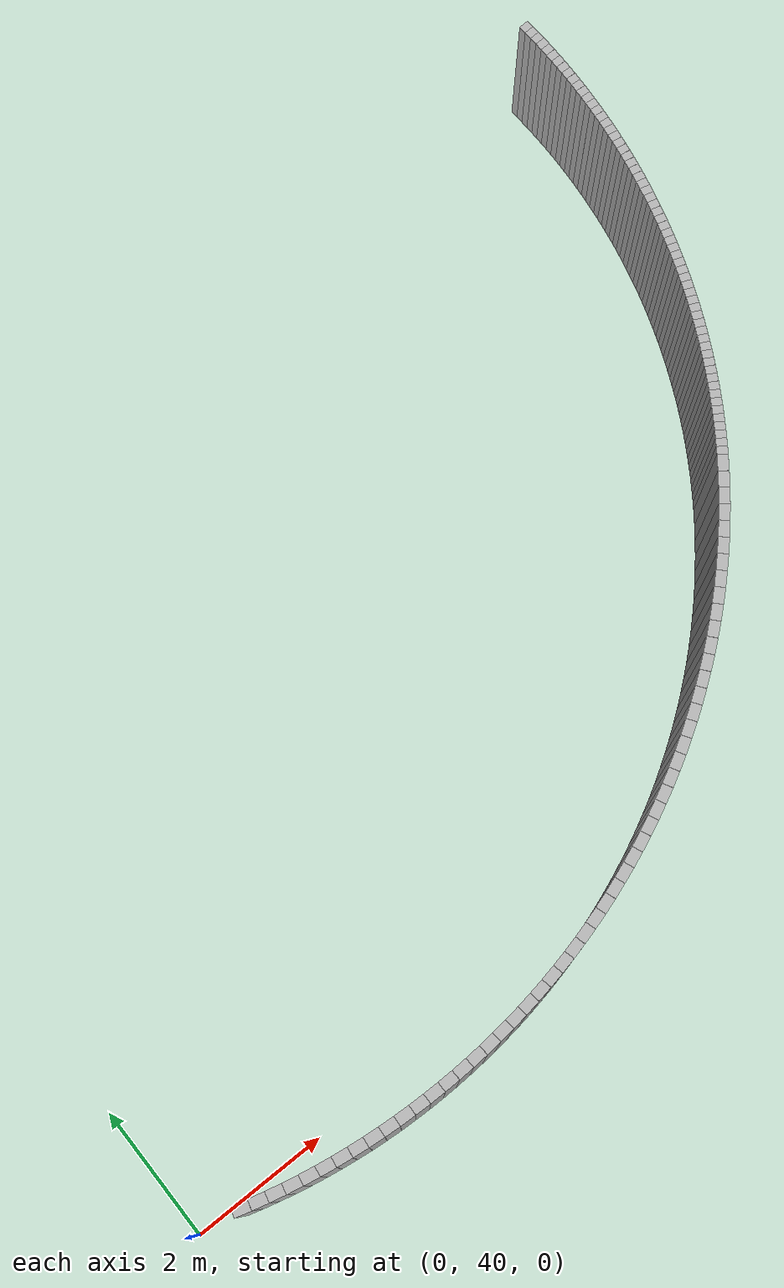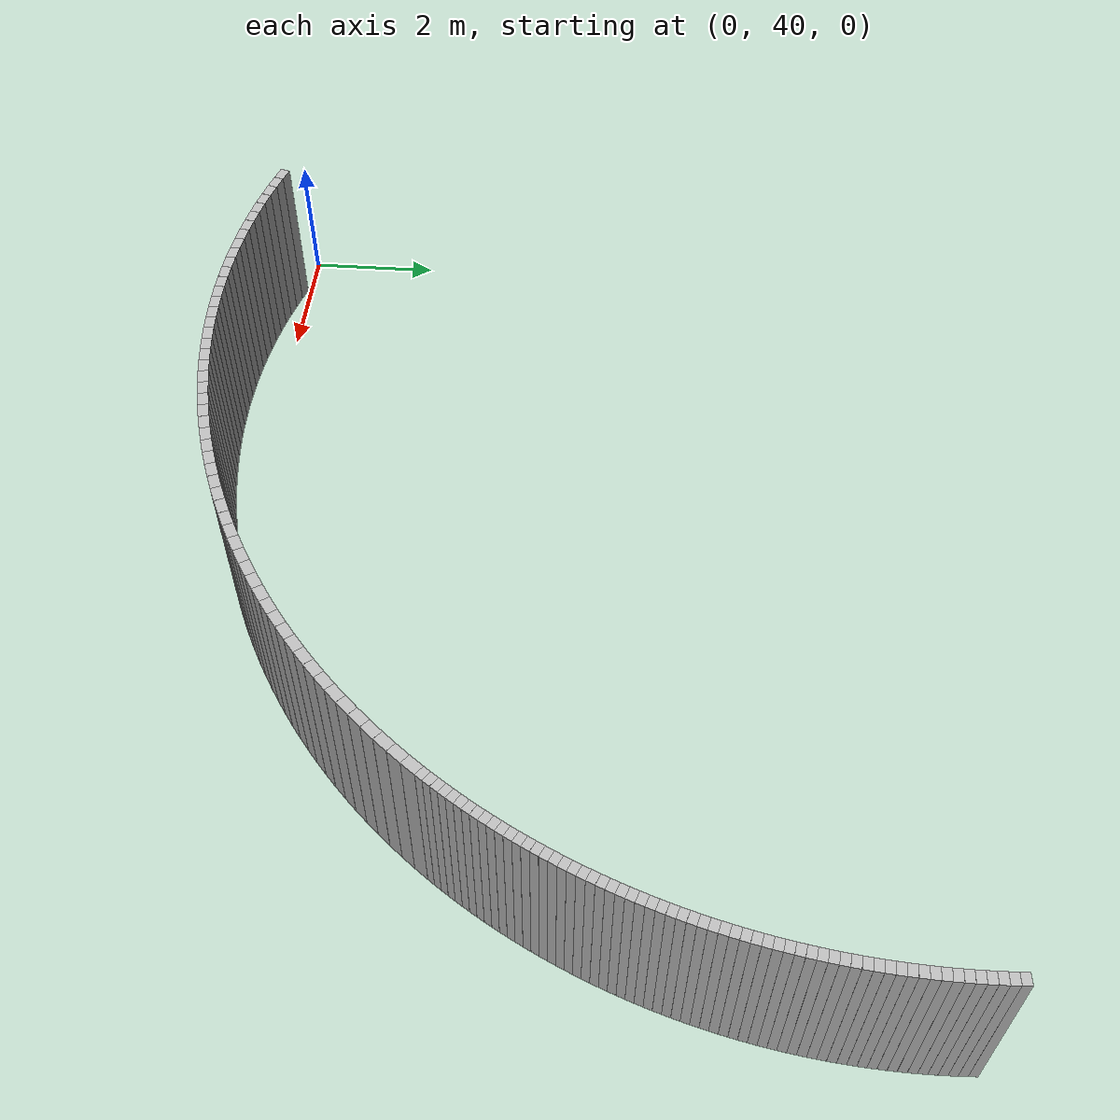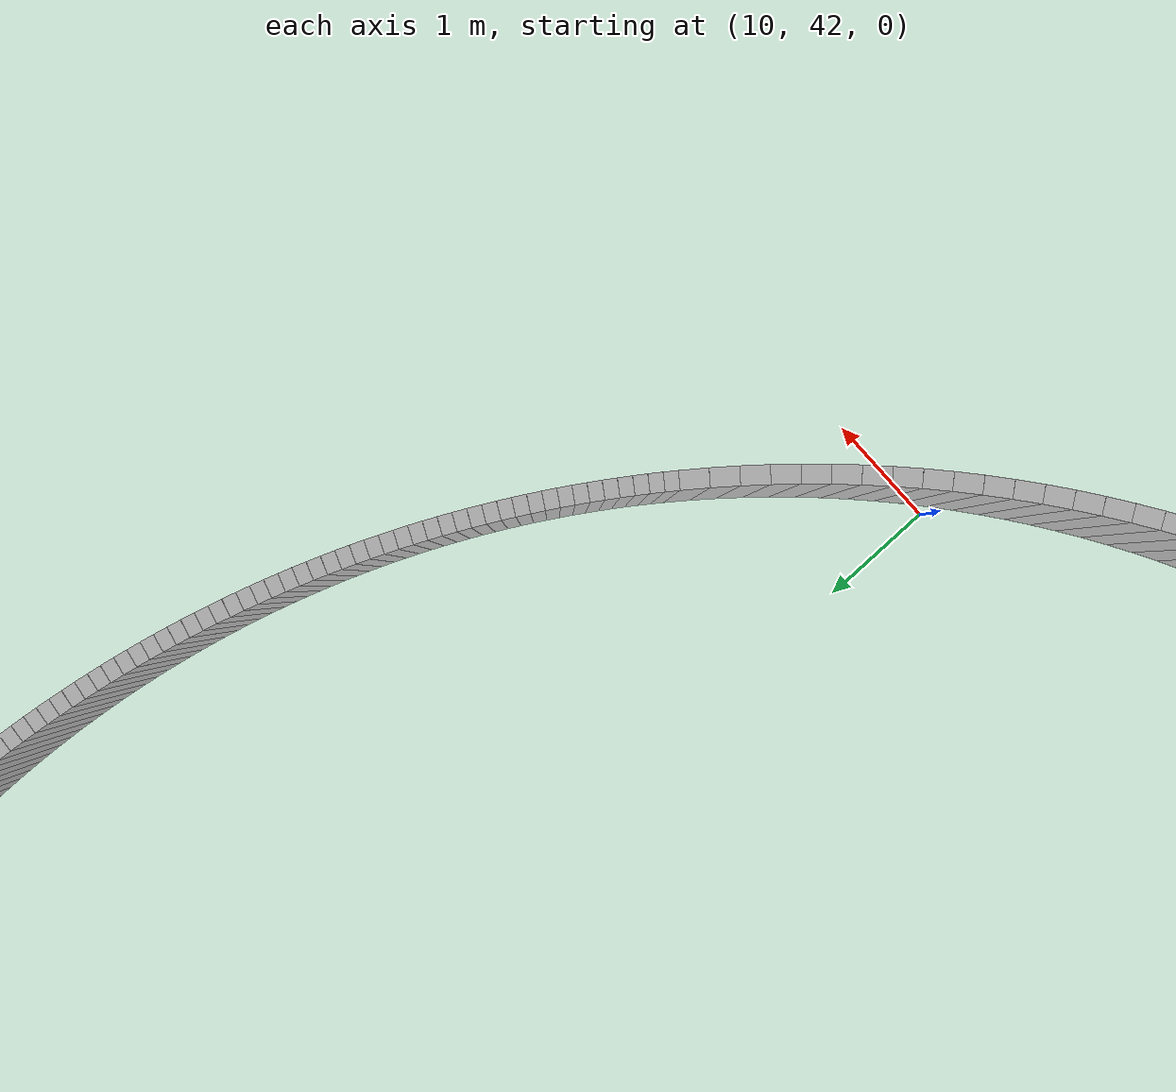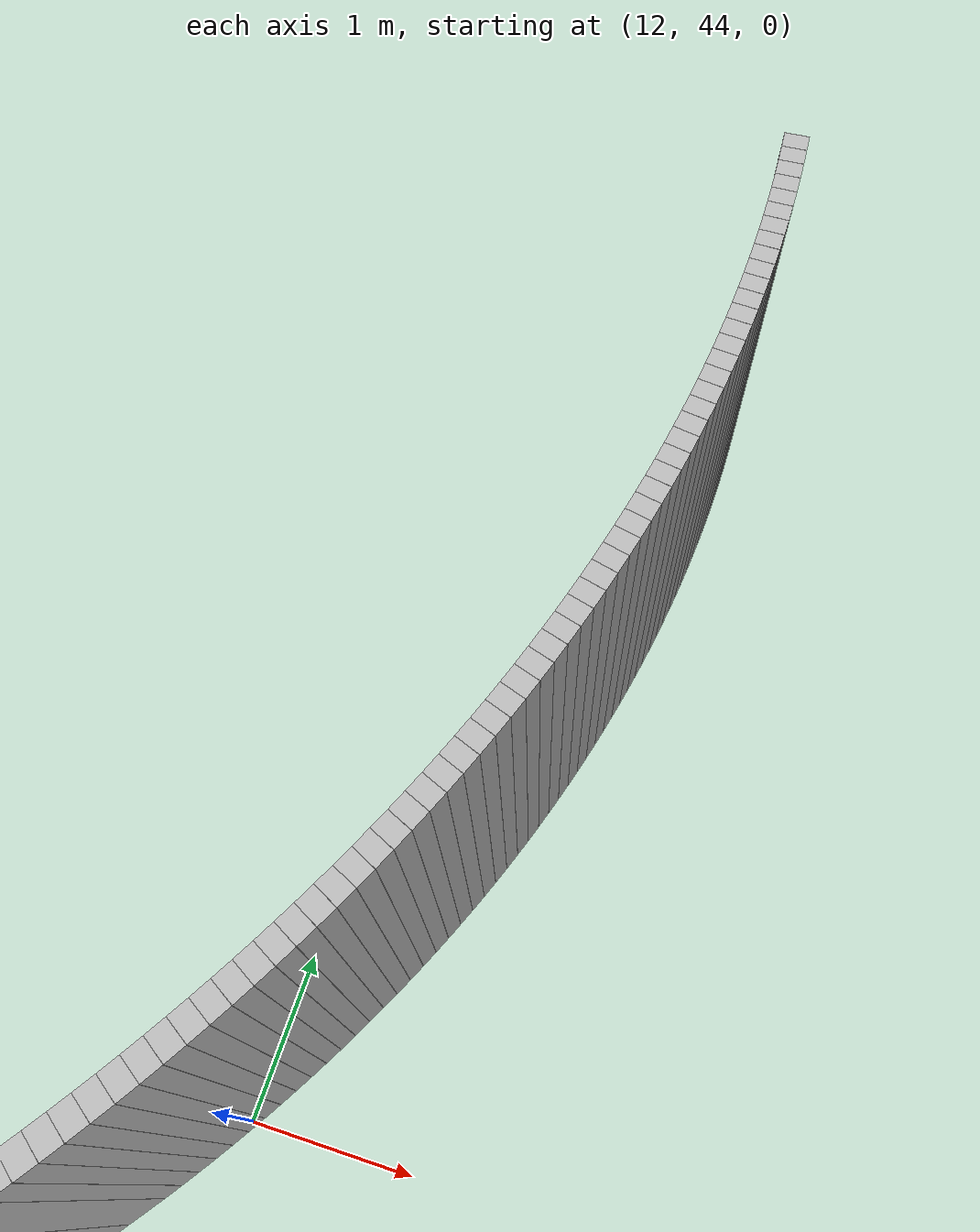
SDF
<sdf version="1.6">
 <model name="sps_4110">
  <static>1</static>
  <allow_auto_disable>0</allow_auto_disable>
  <link name="Wall7954">
   <collision name="collision"><geometry><box><size>0.227303 0.15 2.5</size></box></geometry></collision>
   <visual name="visual">
    <geometry><box><size>0.227303 0.15 2.5</size></box></geometry>
    <transparency>0.0</transparency>
   </visual>
   <pose>0.788841 39.8388 1.25 0 0 -0.281066</pose>
  </link>
  <link name="Wall7955">
   <collision name="collision"><geometry><box><size>0.227543 0.15 2.5</size></box></geometry></collision>
   <visual name="visual">
    <geometry><box><size>0.227543 0.15 2.5</size></box></geometry>
    <transparency>0.0</transparency>
   </visual>
   <pose>1.00805 39.7783 1.25 0 0 -0.257665</pose>
  </link>
  <link name="Wall7956">
   <collision name="collision"><geometry><box><size>0.227405 0.15 2.5</size></box></geometry></collision>
   <visual name="visual">
    <geometry><box><size>0.227405 0.15 2.5</size></box></geometry>
    <transparency>0.0</transparency>
   </visual>
   <pose>1.22866 39.7229 1.25 0 0 -0.234303</pose>
  </link>
  <link name="Wall7957">
   <collision name="collision"><geometry><box><size>0.227527 0.15 2.5</size></box></geometry></collision>
   <visual name="visual">
    <geometry><box><size>0.227527 0.15 2.5</size></box></geometry>
    <transparency>0.0</transparency>
   </visual>
   <pose>1.45046 39.6725 1.25 0 0 -0.212442</pose>
  </link>
  <link name="Wall7958">
   <collision name="collision"><geometry><box><size>0.227281 0.15 2.5</size></box></geometry></collision>
   <visual name="visual">
    <geometry><box><size>0.227281 0.15 2.5</size></box></geometry>
    <transparency>0.0</transparency>
   </visual>
   <pose>1.67327 39.6271 1.25 0 0 -0.189654</pose>
  </link>
  <link name="Wall7959">
   <collision name="collision"><geometry><box><size>0.227494 0.15 2.5</size></box></geometry></collision>
   <visual name="visual">
    <geometry><box><size>0.227494 0.15 2.5</size></box></geometry>
    <transparency>0.0</transparency>
   </visual>
   <pose>1.89706 39.5869 1.25 0 0 -0.166031</pose>
  </link>
  <link name="Wall7960">
   <collision name="collision"><geometry><box><size>0.227385 0.15 2.5</size></box></geometry></collision>
   <visual name="visual">
    <geometry><box><size>0.227385 0.15 2.5</size></box></geometry>
    <transparency>0.0</transparency>
   </visual>
   <pose>2.12176 39.5518 1.25 0 0 -0.143833</pose>
  </link>
  <link name="Wall7961">
   <collision name="collision"><geometry><box><size>0.227448 0.15 2.5</size></box></geometry></collision>
   <visual name="visual">
    <geometry><box><size>0.227448 0.15 2.5</size></box></geometry>
    <transparency>0.0</transparency>
   </visual>
   <pose>2.34716 39.5217 1.25 0 0 -0.121592</pose>
  </link>
  <link name="Wall7962">
   <collision name="collision"><geometry><box><size>0.227528 0.15 2.5</size></box></geometry></collision>
   <visual name="visual">
    <geometry><box><size>0.227528 0.15 2.5</size></box></geometry>
    <transparency>0.0</transparency>
   </visual>
   <pose>2.57326 39.4968 1.25 0 0 -0.0978002</pose>
  </link>
  <link name="Wall7963">
   <collision name="collision"><geometry><box><size>0.227412 0.15 2.5</size></box></geometry></collision>
   <visual name="visual">
    <geometry><box><size>0.227412 0.15 2.5</size></box></geometry>
    <transparency>0.0</transparency>
   </visual>
   <pose>2.79986 39.477 1.25 0 0 -0.076566</pose>
  </link>
  <link name="Wall7964">
   <collision name="collision"><geometry><box><size>0.227549 0.15 2.5</size></box></geometry></collision>
   <visual name="visual">
    <geometry><box><size>0.227549 0.15 2.5</size></box></geometry>
    <transparency>0.0</transparency>
   </visual>
   <pose>3.02685 39.4623 1.25 0 0 -0.0525972</pose>
  </link>
  <link name="Wall7965">
   <collision name="collision"><geometry><box><size>0.227276 0.15 2.5</size></box></geometry></collision>
   <visual name="visual">
    <geometry><box><size>0.227276 0.15 2.5</size></box></geometry>
    <transparency>0.0</transparency>
   </visual>
   <pose>3.25405 39.4529 1.25 0 0 -0.0300823</pose>
  </link>
  <link name="Wall7966">
   <collision name="collision"><geometry><box><size>0.227607 0.15 2.5</size></box></geometry></collision>
   <visual name="visual">
    <geometry><box><size>0.227607 0.15 2.5</size></box></geometry>
    <transparency>0.0</transparency>
   </visual>
   <pose>3.48144 39.4486 1.25 0 0 -0.00777672</pose>
  </link>
  <link name="Wall7967">
   <collision name="collision"><geometry><box><size>0.227442 0.15 2.5</size></box></geometry></collision>
   <visual name="visual">
    <geometry><box><size>0.227442 0.15 2.5</size></box></geometry>
    <transparency>0.0</transparency>
   </visual>
   <pose>3.70895 39.4494 1.25 0 -0 0.0147601</pose>
  </link>
  <link name="Wall7968">
   <collision name="collision"><geometry><box><size>0.227345 0.15 2.5</size></box></geometry></collision>
   <visual name="visual">
    <geometry><box><size>0.227345 0.15 2.5</size></box></geometry>
    <transparency>0.0</transparency>
   </visual>
   <pose>3.93624 39.4555 1.25 0 -0 0.0389379</pose>
  </link>
  <link name="Wall7969">
   <collision name="collision"><geometry><box><size>0.227638 0.15 2.5</size></box></geometry></collision>
   <visual name="visual">
    <geometry><box><size>0.227638 0.15 2.5</size></box></geometry>
    <transparency>0.0</transparency>
   </visual>
   <pose>4.16344 39.4667 1.25 0 -0 0.0595588</pose>
  </link>
  <link name="Wall7970">
   <collision name="collision"><geometry><box><size>0.227422 0.15 2.5</size></box></geometry></collision>
   <visual name="visual">
    <geometry><box><size>0.227422 0.15 2.5</size></box></geometry>
    <transparency>0.0</transparency>
   </visual>
   <pose>4.39037 39.483 1.25 0 -0 0.0838321</pose>
  </link>
  <link name="Wall7971">
   <collision name="collision"><geometry><box><size>0.227484 0.15 2.5</size></box></geometry></collision>
   <visual name="visual">
    <geometry><box><size>0.227484 0.15 2.5</size></box></geometry>
    <transparency>0.0</transparency>
   </visual>
   <pose>4.61678 39.5046 1.25 0 -0 0.10645</pose>
  </link>
  <link name="Wall7972">
   <collision name="collision"><geometry><box><size>0.227473 0.15 2.5</size></box></geometry></collision>
   <visual name="visual">
    <geometry><box><size>0.227473 0.15 2.5</size></box></geometry>
    <transparency>0.0</transparency>
   </visual>
   <pose>4.84267 39.5313 1.25 0 -0 0.128881</pose>
  </link>
  <link name="Wall7973">
   <collision name="collision"><geometry><box><size>0.227404 0.15 2.5</size></box></geometry></collision>
   <visual name="visual">
    <geometry><box><size>0.227404 0.15 2.5</size></box></geometry>
    <transparency>0.0</transparency>
   </visual>
   <pose>5.06786 39.5631 1.25 0 -0 0.15169</pose>
  </link>
  <link name="Wall7974">
   <collision name="collision"><geometry><box><size>0.227443 0.15 2.5</size></box></geometry></collision>
   <visual name="visual">
    <geometry><box><size>0.227443 0.15 2.5</size></box></geometry>
    <transparency>0.0</transparency>
   </visual>
   <pose>5.29226 39.6 1.25 0 -0 0.174237</pose>
  </link>
  <link name="Wall7975">
   <collision name="collision"><geometry><box><size>0.227442 0.15 2.5</size></box></geometry></collision>
   <visual name="visual">
    <geometry><box><size>0.227442 0.15 2.5</size></box></geometry>
    <transparency>0.0</transparency>
   </visual>
   <pose>5.51577 39.642 1.25 0 -0 0.197448</pose>
  </link>
  <link name="Wall7976">
   <collision name="collision"><geometry><box><size>0.22745 0.15 2.5</size></box></geometry></collision>
   <visual name="visual">
    <geometry><box><size>0.22745 0.15 2.5</size></box></geometry>
    <transparency>0.0</transparency>
   </visual>
   <pose>5.73827 39.6891 1.25 0 -0 0.219659</pose>
  </link>
  <link name="Wall7977">
   <collision name="collision"><geometry><box><size>0.227422 0.15 2.5</size></box></geometry></collision>
   <visual name="visual">
    <geometry><box><size>0.227422 0.15 2.5</size></box></geometry>
    <transparency>0.0</transparency>
   </visual>
   <pose>5.95965 39.7412 1.25 0 -0 0.24257</pose>
  </link>
  <link name="Wall7978">
   <collision name="collision"><geometry><box><size>0.227364 0.15 2.5</size></box></geometry></collision>
   <visual name="visual">
    <geometry><box><size>0.227364 0.15 2.5</size></box></geometry>
    <transparency>0.0</transparency>
   </visual>
   <pose>6.17974 39.7983 1.25 0 -0 0.265098</pose>
  </link>
  <link name="Wall7979">
   <collision name="collision"><geometry><box><size>0.227573 0.15 2.5</size></box></geometry></collision>
   <visual name="visual">
    <geometry><box><size>0.227573 0.15 2.5</size></box></geometry>
    <transparency>0.0</transparency>
   </visual>
   <pose>6.39855 39.8604 1.25 0 -0 0.287989</pose>
  </link>
  <link name="Wall7980">
   <collision name="collision"><geometry><box><size>0.22734 0.15 2.5</size></box></geometry></collision>
   <visual name="visual">
    <geometry><box><size>0.22734 0.15 2.5</size></box></geometry>
    <transparency>0.0</transparency>
   </visual>
   <pose>6.61587 39.9275 1.25 0 -0 0.311053</pose>
  </link>
  <link name="Wall7981">
   <collision name="collision"><geometry><box><size>0.227537 0.15 2.5</size></box></geometry></collision>
   <visual name="visual">
    <geometry><box><size>0.227537 0.15 2.5</size></box></geometry>
    <transparency>0.0</transparency>
   </visual>
   <pose>6.83157 39.9996 1.25 0 -0 0.333966</pose>
  </link>
  <link name="Wall7982">
   <collision name="collision"><geometry><box><size>0.22744 0.15 2.5</size></box></geometry></collision>
   <visual name="visual">
    <geometry><box><size>0.22744 0.15 2.5</size></box></geometry>
    <transparency>0.0</transparency>
   </visual>
   <pose>7.04565 40.0765 1.25 0 -0 0.355787</pose>
  </link>
  <link name="Wall7983">
   <collision name="collision"><geometry><box><size>0.227336 0.15 2.5</size></box></geometry></collision>
   <visual name="visual">
    <geometry><box><size>0.227336 0.15 2.5</size></box></geometry>
    <transparency>0.0</transparency>
   </visual>
   <pose>7.25783 40.1582 1.25 0 -0 0.37926</pose>
  </link>
  <link name="Wall7984">
   <collision name="collision"><geometry><box><size>0.227559 0.15 2.5</size></box></geometry></collision>
   <visual name="visual">
    <geometry><box><size>0.227559 0.15 2.5</size></box></geometry>
    <transparency>0.0</transparency>
   </visual>
   <pose>7.46813 40.2448 1.25 0 -0 0.402074</pose>
  </link>
  <link name="Wall7985">
   <collision name="collision"><geometry><box><size>0.22736 0.15 2.5</size></box></geometry></collision>
   <visual name="visual">
    <geometry><box><size>0.22736 0.15 2.5</size></box></geometry>
    <transparency>0.0</transparency>
   </visual>
   <pose>7.67644 40.3361 1.25 0 -0 0.424139</pose>
  </link>
  <link name="Wall7986">
   <collision name="collision"><geometry><box><size>0.227569 0.15 2.5</size></box></geometry></collision>
   <visual name="visual">
    <geometry><box><size>0.227569 0.15 2.5</size></box></geometry>
    <transparency>0.0</transparency>
   </visual>
   <pose>7.88265 40.4321 1.25 0 -0 0.447094</pose>
  </link>
  <link name="Wall7987">
   <collision name="collision"><geometry><box><size>0.227487 0.15 2.5</size></box></geometry></collision>
   <visual name="visual">
    <geometry><box><size>0.227487 0.15 2.5</size></box></geometry>
    <transparency>0.0</transparency>
   </visual>
   <pose>8.08666 40.5328 1.25 0 -0 0.470007</pose>
  </link>
  <link name="Wall7988">
   <collision name="collision"><geometry><box><size>0.227328 0.15 2.5</size></box></geometry></collision>
   <visual name="visual">
    <geometry><box><size>0.227328 0.15 2.5</size></box></geometry>
    <transparency>0.0</transparency>
   </visual>
   <pose>8.28826 40.638 1.25 0 -0 0.491868</pose>
  </link>
  <link name="Wall7989">
   <collision name="collision"><geometry><box><size>0.2276 0.15 2.5</size></box></geometry></collision>
   <visual name="visual">
    <geometry><box><size>0.2276 0.15 2.5</size></box></geometry>
    <transparency>0.0</transparency>
   </visual>
   <pose>8.48745 40.7478 1.25 0 -0 0.51572</pose>
  </link>
  <link name="Wall7990">
   <collision name="collision"><geometry><box><size>0.227353 0.15 2.5</size></box></geometry></collision>
   <visual name="visual">
    <geometry><box><size>0.227353 0.15 2.5</size></box></geometry>
    <transparency>0.0</transparency>
   </visual>
   <pose>8.68404 40.8622 1.25 0 -0 0.538394</pose>
  </link>
  <link name="Wall7991">
   <collision name="collision"><geometry><box><size>0.227495 0.15 2.5</size></box></geometry></collision>
   <visual name="visual">
    <geometry><box><size>0.227495 0.15 2.5</size></box></geometry>
    <transparency>0.0</transparency>
   </visual>
   <pose>8.87795 40.981 1.25 0 -0 0.560988</pose>
  </link>
  <link name="Wall7992">
   <collision name="collision"><geometry><box><size>0.227482 0.15 2.5</size></box></geometry></collision>
   <visual name="visual">
    <geometry><box><size>0.227482 0.15 2.5</size></box></geometry>
    <transparency>0.0</transparency>
   </visual>
   <pose>9.06918 41.1042 1.25 0 -0 0.583687</pose>
  </link>
  <link name="Wall7993">
   <collision name="collision"><geometry><box><size>0.227351 0.15 2.5</size></box></geometry></collision>
   <visual name="visual">
    <geometry><box><size>0.227351 0.15 2.5</size></box></geometry>
    <transparency>0.0</transparency>
   </visual>
   <pose>9.25747 41.2317 1.25 0 -0 0.606767</pose>
  </link>
  <link name="Wall7994">
   <collision name="collision"><geometry><box><size>0.227515 0.15 2.5</size></box></geometry></collision>
   <visual name="visual">
    <geometry><box><size>0.227515 0.15 2.5</size></box></geometry>
    <transparency>0.0</transparency>
   </visual>
   <pose>9.44286 41.3634 1.25 0 -0 0.628638</pose>
  </link>
  <link name="Wall7995">
   <collision name="collision"><geometry><box><size>0.227437 0.15 2.5</size></box></geometry></collision>
   <visual name="visual">
    <geometry><box><size>0.227437 0.15 2.5</size></box></geometry>
    <transparency>0.0</transparency>
   </visual>
   <pose>9.62527 41.4993 1.25 0 -0 0.651981</pose>
  </link>
  <link name="Wall7996">
   <collision name="collision"><geometry><box><size>0.227378 0.15 2.5</size></box></geometry></collision>
   <visual name="visual">
    <geometry><box><size>0.227378 0.15 2.5</size></box></geometry>
    <transparency>0.0</transparency>
   </visual>
   <pose>9.80447 41.6393 1.25 0 -0 0.674322</pose>
  </link>
  <link name="Wall7997">
   <collision name="collision"><geometry><box><size>0.227582 0.15 2.5</size></box></geometry></collision>
   <visual name="visual">
    <geometry><box><size>0.227582 0.15 2.5</size></box></geometry>
    <transparency>0.0</transparency>
   </visual>
   <pose>9.98046 41.7834 1.25 0 -0 0.697863</pose>
  </link>
  <link name="Wall7998">
   <collision name="collision"><geometry><box><size>0.227458 0.15 2.5</size></box></geometry></collision>
   <visual name="visual">
    <geometry><box><size>0.227458 0.15 2.5</size></box></geometry>
    <transparency>0.0</transparency>
   </visual>
   <pose>10.1532 41.9315 1.25 0 -0 0.71989</pose>
  </link>
  <link name="Wall7999">
   <collision name="collision"><geometry><box><size>0.227481 0.15 2.5</size></box></geometry></collision>
   <visual name="visual">
    <geometry><box><size>0.227481 0.15 2.5</size></box></geometry>
    <transparency>0.0</transparency>
   </visual>
   <pose>10.3225 42.0834 1.25 0 -0 0.742508</pose>
  </link>
  <link name="Wall8000">
   <collision name="collision"><geometry><box><size>0.227447 0.15 2.5</size></box></geometry></collision>
   <visual name="visual">
    <geometry><box><size>0.227447 0.15 2.5</size></box></geometry>
    <transparency>0.0</transparency>
   </visual>
   <pose>10.4883 42.2391 1.25 0 -0 0.765473</pose>
  </link>
  <link name="Wall8001">
   <collision name="collision"><geometry><box><size>0.227402 0.15 2.5</size></box></geometry></collision>
   <visual name="visual">
    <geometry><box><size>0.227402 0.15 2.5</size></box></geometry>
    <transparency>0.0</transparency>
   </visual>
   <pose>10.6505 42.3985 1.25 0 -0 0.787865</pose>
  </link>
  <link name="Wall8002">
   <collision name="collision"><geometry><box><size>0.227481 0.15 2.5</size></box></geometry></collision>
   <visual name="visual">
    <geometry><box><size>0.227481 0.15 2.5</size></box></geometry>
    <transparency>0.0</transparency>
   </visual>
   <pose>10.809 42.5616 1.25 0 -0 0.811773</pose>
  </link>
  <link name="Wall8003">
   <collision name="collision"><geometry><box><size>0.227409 0.15 2.5</size></box></geometry></collision>
   <visual name="visual">
    <geometry><box><size>0.227409 0.15 2.5</size></box></geometry>
    <transparency>0.0</transparency>
   </visual>
   <pose>10.9636 42.7283 1.25 0 -0 0.833812</pose>
  </link>
  <link name="Wall8004">
   <collision name="collision"><geometry><box><size>0.227368 0.15 2.5</size></box></geometry></collision>
   <visual name="visual">
    <geometry><box><size>0.227368 0.15 2.5</size></box></geometry>
    <transparency>0.0</transparency>
   </visual>
   <pose>11.1146 42.8984 1.25 0 -0 0.856259</pose>
  </link>
  <link name="Wall8005">
   <collision name="collision"><geometry><box><size>0.227457 0.15 2.5</size></box></geometry></collision>
   <visual name="visual">
    <geometry><box><size>0.227457 0.15 2.5</size></box></geometry>
    <transparency>0.0</transparency>
   </visual>
   <pose>11.2616 43.0719 1.25 0 -0 0.879459</pose>
  </link>
  <link name="Wall8006">
   <collision name="collision"><geometry><box><size>0.227506 0.15 2.5</size></box></geometry></collision>
   <visual name="visual">
    <geometry><box><size>0.227506 0.15 2.5</size></box></geometry>
    <transparency>0.0</transparency>
   </visual>
   <pose>11.4047 43.2487 1.25 0 -0 0.901376</pose>
  </link>
  <link name="Wall8007">
   <collision name="collision"><geometry><box><size>0.227369 0.15 2.5</size></box></geometry></collision>
   <visual name="visual">
    <geometry><box><size>0.227369 0.15 2.5</size></box></geometry>
    <transparency>0.0</transparency>
   </visual>
   <pose>11.5437 43.4287 1.25 0 -0 0.924987</pose>
  </link>
  <link name="Wall8008">
   <collision name="collision"><geometry><box><size>0.113621 0.15 2.5</size></box></geometry></collision>
   <visual name="visual">
    <geometry><box><size>0.113621 0.15 2.5</size></box></geometry>
    <transparency>0.0</transparency>
   </visual>
   <pose>11.6456 43.5654 1.25 0 -0 0.940618</pose>
  </link>
  <link name="Wall8009">
   <collision name="collision"><geometry><box><size>0.113928 0.15 2.5</size></box></geometry></collision>
   <visual name="visual">
    <geometry><box><size>0.113928 0.15 2.5</size></box></geometry>
    <transparency>0.0</transparency>
   </visual>
   <pose>11.7121 43.6577 1.25 0 -0 0.952477</pose>
  </link>
  <link name="Wall8010">
   <collision name="collision"><geometry><box><size>0.113641 0.15 2.5</size></box></geometry></collision>
   <visual name="visual">
    <geometry><box><size>0.113641 0.15 2.5</size></box></geometry>
    <transparency>0.0</transparency>
   </visual>
   <pose>11.7775 43.7508 1.25 0 -0 0.96447</pose>
  </link>
  <link name="Wall8011">
   <collision name="collision"><geometry><box><size>0.11364 0.15 2.5</size></box></geometry></collision>
   <visual name="visual">
    <geometry><box><size>0.11364 0.15 2.5</size></box></geometry>
    <transparency>0.0</transparency>
   </visual>
   <pose>11.8416 43.8446 1.25 0 -0 0.976835</pose>
  </link>
  <link name="Wall8012">
   <collision name="collision"><geometry><box><size>0.11391 0.15 2.5</size></box></geometry></collision>
   <visual name="visual">
    <geometry><box><size>0.11391 0.15 2.5</size></box></geometry>
    <transparency>0.0</transparency>
   </visual>
   <pose>11.9048 43.9392 1.25 0 -0 0.986806</pose>
  </link>
  <link name="Wall8013">
   <collision name="collision"><geometry><box><size>0.113736 0.15 2.5</size></box></geometry></collision>
   <visual name="visual">
    <geometry><box><size>0.113736 0.15 2.5</size></box></geometry>
    <transparency>0.0</transparency>
   </visual>
   <pose>11.9671 44.0345 1.25 0 -0 0.997976</pose>
  </link>
  <link name="Wall8014">
   <collision name="collision"><geometry><box><size>0.113661 0.15 2.5</size></box></geometry></collision>
   <visual name="visual">
    <geometry><box><size>0.113661 0.15 2.5</size></box></geometry>
    <transparency>0.0</transparency>
   </visual>
   <pose>12.0282 44.1304 1.25 0 -0 1.00901</pose>
  </link>
  <link name="Wall8015">
   <collision name="collision"><geometry><box><size>0.113627 0.15 2.5</size></box></geometry></collision>
   <visual name="visual">
    <geometry><box><size>0.113627 0.15 2.5</size></box></geometry>
    <transparency>0.0</transparency>
   </visual>
   <pose>12.088 44.227 1.25 0 -0 1.02273</pose>
  </link>
  <link name="Wall8016">
   <collision name="collision"><geometry><box><size>0.113949 0.15 2.5</size></box></geometry></collision>
   <visual name="visual">
    <geometry><box><size>0.113949 0.15 2.5</size></box></geometry>
    <transparency>0.0</transparency>
   </visual>
   <pose>12.1468 44.3244 1.25 0 -0 1.03258</pose>
  </link>
  <link name="Wall8017">
   <collision name="collision"><geometry><box><size>0.113644 0.15 2.5</size></box></geometry></collision>
   <visual name="visual">
    <geometry><box><size>0.113644 0.15 2.5</size></box></geometry>
    <transparency>0.0</transparency>
   </visual>
   <pose>12.2046 44.4224 1.25 0 -0 1.04346</pose>
  </link>
  <link name="Wall8018">
   <collision name="collision"><geometry><box><size>0.113755 0.15 2.5</size></box></geometry></collision>
   <visual name="visual">
    <geometry><box><size>0.113755 0.15 2.5</size></box></geometry>
    <transparency>0.0</transparency>
   </visual>
   <pose>12.2613 44.521 1.25 0 -0 1.05578</pose>
  </link>
  <link name="Wall8019">
   <collision name="collision"><geometry><box><size>0.113781 0.15 2.5</size></box></geometry></collision>
   <visual name="visual">
    <geometry><box><size>0.113781 0.15 2.5</size></box></geometry>
    <transparency>0.0</transparency>
   </visual>
   <pose>12.3168 44.6203 1.25 0 -0 1.06636</pose>
  </link>
  <link name="Wall8020">
   <collision name="collision"><geometry><box><size>0.11368 0.15 2.5</size></box></geometry></collision>
   <visual name="visual">
    <geometry><box><size>0.11368 0.15 2.5</size></box></geometry>
    <transparency>0.0</transparency>
   </visual>
   <pose>12.3711 44.7202 1.25 0 -0 1.07809</pose>
  </link>
  <link name="Wall8021">
   <collision name="collision"><geometry><box><size>0.113731 0.15 2.5</size></box></geometry></collision>
   <visual name="visual">
    <geometry><box><size>0.113731 0.15 2.5</size></box></geometry>
    <transparency>0.0</transparency>
   </visual>
   <pose>12.4243 44.8207 1.25 0 -0 1.08987</pose>
  </link>
  <link name="Wall8022">
   <collision name="collision"><geometry><box><size>0.113661 0.15 2.5</size></box></geometry></collision>
   <visual name="visual">
    <geometry><box><size>0.113661 0.15 2.5</size></box></geometry>
    <transparency>0.0</transparency>
   </visual>
   <pose>12.4763 44.9218 1.25 0 -0 1.10163</pose>
  </link>
  <link name="Wall8023">
   <collision name="collision"><geometry><box><size>0.11377 0.15 2.5</size></box></geometry></collision>
   <visual name="visual">
    <geometry><box><size>0.11377 0.15 2.5</size></box></geometry>
    <transparency>0.0</transparency>
   </visual>
   <pose>12.5272 45.0235 1.25 0 -0 1.11171</pose>
  </link>
  <link name="Wall8024">
   <collision name="collision"><geometry><box><size>0.113705 0.15 2.5</size></box></geometry></collision>
   <visual name="visual">
    <geometry><box><size>0.113705 0.15 2.5</size></box></geometry>
    <transparency>0.0</transparency>
   </visual>
   <pose>12.577 45.1258 1.25 0 -0 1.12515</pose>
  </link>
  <link name="Wall8025">
   <collision name="collision"><geometry><box><size>0.113649 0.15 2.5</size></box></geometry></collision>
   <visual name="visual">
    <geometry><box><size>0.113649 0.15 2.5</size></box></geometry>
    <transparency>0.0</transparency>
   </visual>
   <pose>12.6254 45.2286 1.25 0 -0 1.13501</pose>
  </link>
  <link name="Wall8026">
   <collision name="collision"><geometry><box><size>0.11374 0.15 2.5</size></box></geometry></collision>
   <visual name="visual">
    <geometry><box><size>0.11374 0.15 2.5</size></box></geometry>
    <transparency>0.0</transparency>
   </visual>
   <pose>12.6729 45.3319 1.25 0 -0 1.14483</pose>
  </link>
  <link name="Wall8027">
   <collision name="collision"><geometry><box><size>0.113726 0.15 2.5</size></box></geometry></collision>
   <visual name="visual">
    <geometry><box><size>0.113726 0.15 2.5</size></box></geometry>
    <transparency>0.0</transparency>
   </visual>
   <pose>12.7192 45.4358 1.25 0 -0 1.15829</pose>
  </link>
  <link name="Wall8028">
   <collision name="collision"><geometry><box><size>0.113731 0.15 2.5</size></box></geometry></collision>
   <visual name="visual">
    <geometry><box><size>0.113731 0.15 2.5</size></box></geometry>
    <transparency>0.0</transparency>
   </visual>
   <pose>12.7643 45.5402 1.25 0 -0 1.16767</pose>
  </link>
  <link name="Wall8029">
   <collision name="collision"><geometry><box><size>0.113752 0.15 2.5</size></box></geometry></collision>
   <visual name="visual">
    <geometry><box><size>0.113752 0.15 2.5</size></box></geometry>
    <transparency>0.0</transparency>
   </visual>
   <pose>12.8082 45.6451 1.25 0 -0 1.18112</pose>
  </link>
  <link name="Wall8030">
   <collision name="collision"><geometry><box><size>0.113872 0.15 2.5</size></box></geometry></collision>
   <visual name="visual">
    <geometry><box><size>0.113872 0.15 2.5</size></box></geometry>
    <transparency>0.0</transparency>
   </visual>
   <pose>12.8509 45.7506 1.25 0 -0 1.19138</pose>
  </link>
  <link name="Wall8031">
   <collision name="collision"><geometry><box><size>0.11378 0.15 2.5</size></box></geometry></collision>
   <visual name="visual">
    <geometry><box><size>0.11378 0.15 2.5</size></box></geometry>
    <transparency>0.0</transparency>
   </visual>
   <pose>12.8924 45.8566 1.25 0 -0 1.20374</pose>
  </link>
  <link name="Wall8032">
   <collision name="collision"><geometry><box><size>0.11352 0.15 2.5</size></box></geometry></collision>
   <visual name="visual">
    <geometry><box><size>0.11352 0.15 2.5</size></box></geometry>
    <transparency>0.0</transparency>
   </visual>
   <pose>12.9327 45.9629 1.25 0 -0 1.21435</pose>
  </link>
  <link name="Wall8033">
   <collision name="collision"><geometry><box><size>0.113731 0.15 2.5</size></box></geometry></collision>
   <visual name="visual">
    <geometry><box><size>0.113731 0.15 2.5</size></box></geometry>
    <transparency>0.0</transparency>
   </visual>
   <pose>12.9717 46.0696 1.25 0 -0 1.22647</pose>
  </link>
  <link name="Wall8034">
   <collision name="collision"><geometry><box><size>0.113613 0.15 2.5</size></box></geometry></collision>
   <visual name="visual">
    <geometry><box><size>0.113613 0.15 2.5</size></box></geometry>
    <transparency>0.0</transparency>
   </visual>
   <pose>13.0095 46.1768 1.25 0 -0 1.23749</pose>
  </link>
  <link name="Wall8035">
   <collision name="collision"><geometry><box><size>0.113876 0.15 2.5</size></box></geometry></collision>
   <visual name="visual">
    <geometry><box><size>0.113876 0.15 2.5</size></box></geometry>
    <transparency>0.0</transparency>
   </visual>
   <pose>13.046 46.2845 1.25 0 -0 1.24905</pose>
  </link>
  <link name="Wall8036">
   <collision name="collision"><geometry><box><size>0.113612 0.15 2.5</size></box></geometry></collision>
   <visual name="visual">
    <geometry><box><size>0.113612 0.15 2.5</size></box></geometry>
    <transparency>0.0</transparency>
   </visual>
   <pose>13.0814 46.3926 1.25 0 -0 1.25958</pose>
  </link>
  <link name="Wall8037">
   <collision name="collision"><geometry><box><size>0.113729 0.15 2.5</size></box></geometry></collision>
   <visual name="visual">
    <geometry><box><size>0.113729 0.15 2.5</size></box></geometry>
    <transparency>0.0</transparency>
   </visual>
   <pose>13.1157 46.501 1.25 0 -0 1.2706</pose>
  </link>
  <link name="Wall8038">
   <collision name="collision"><geometry><box><size>0.1139 0.15 2.5</size></box></geometry></collision>
   <visual name="visual">
    <geometry><box><size>0.1139 0.15 2.5</size></box></geometry>
    <transparency>0.0</transparency>
   </visual>
   <pose>13.1487 46.6099 1.25 0 -0 1.28227</pose>
  </link>
  <link name="Wall8039">
   <collision name="collision"><geometry><box><size>0.113685 0.15 2.5</size></box></geometry></collision>
   <visual name="visual">
    <geometry><box><size>0.113685 0.15 2.5</size></box></geometry>
    <transparency>0.0</transparency>
   </visual>
   <pose>13.1804 46.7192 1.25 0 -0 1.29456</pose>
  </link>
  <link name="Wall8040">
   <collision name="collision"><geometry><box><size>0.113594 0.15 2.5</size></box></geometry></collision>
   <visual name="visual">
    <geometry><box><size>0.113594 0.15 2.5</size></box></geometry>
    <transparency>0.0</transparency>
   </visual>
   <pose>13.2108 46.8287 1.25 0 -0 1.30549</pose>
  </link>
  <link name="Wall8041">
   <collision name="collision"><geometry><box><size>0.113811 0.15 2.5</size></box></geometry></collision>
   <visual name="visual">
    <geometry><box><size>0.113811 0.15 2.5</size></box></geometry>
    <transparency>0.0</transparency>
   </visual>
   <pose>13.24 46.9386 1.25 0 -0 1.3171</pose>
  </link>
  <link name="Wall8042">
   <collision name="collision"><geometry><box><size>0.113763 0.15 2.5</size></box></geometry></collision>
   <visual name="visual">
    <geometry><box><size>0.113763 0.15 2.5</size></box></geometry>
    <transparency>0.0</transparency>
   </visual>
   <pose>13.2679 47.0489 1.25 0 -0 1.32751</pose>
  </link>
  <link name="Wall8043">
   <collision name="collision"><geometry><box><size>0.113849 0.15 2.5</size></box></geometry></collision>
   <visual name="visual">
    <geometry><box><size>0.113849 0.15 2.5</size></box></geometry>
    <transparency>0.0</transparency>
   </visual>
   <pose>13.2946 47.1595 1.25 0 -0 1.34038</pose>
  </link>
  <link name="Wall8044">
   <collision name="collision"><geometry><box><size>0.113709 0.15 2.5</size></box></geometry></collision>
   <visual name="visual">
    <geometry><box><size>0.113709 0.15 2.5</size></box></geometry>
    <transparency>0.0</transparency>
   </visual>
   <pose>13.3201 47.2704 1.25 0 -0 1.35056</pose>
  </link>
  <link name="Wall8045">
   <collision name="collision"><geometry><box><size>0.113674 0.15 2.5</size></box></geometry></collision>
   <visual name="visual">
    <geometry><box><size>0.113674 0.15 2.5</size></box></geometry>
    <transparency>0.0</transparency>
   </visual>
   <pose>13.3443 47.3815 1.25 0 -0 1.36203</pose>
  </link>
  <link name="Wall8046">
   <collision name="collision"><geometry><box><size>0.113583 0.15 2.5</size></box></geometry></collision>
   <visual name="visual">
    <geometry><box><size>0.113583 0.15 2.5</size></box></geometry>
    <transparency>0.0</transparency>
   </visual>
   <pose>13.3671 47.4928 1.25 0 -0 1.37393</pose>
  </link>
  <link name="Wall8047">
   <collision name="collision"><geometry><box><size>0.113771 0.15 2.5</size></box></geometry></collision>
   <visual name="visual">
    <geometry><box><size>0.113771 0.15 2.5</size></box></geometry>
    <transparency>0.0</transparency>
   </visual>
   <pose>13.3888 47.6044 1.25 0 -0 1.38518</pose>
  </link>
  <link name="Wall8048">
   <collision name="collision"><geometry><box><size>0.113912 0.15 2.5</size></box></geometry></collision>
   <visual name="visual">
    <geometry><box><size>0.113912 0.15 2.5</size></box></geometry>
    <transparency>0.0</transparency>
   </visual>
   <pose>13.4091 47.7164 1.25 0 -0 1.39631</pose>
  </link>
  <link name="Wall8049">
   <collision name="collision"><geometry><box><size>0.113747 0.15 2.5</size></box></geometry></collision>
   <visual name="visual">
    <geometry><box><size>0.113747 0.15 2.5</size></box></geometry>
    <transparency>0.0</transparency>
   </visual>
   <pose>13.4282 47.8286 1.25 0 -0 1.40803</pose>
  </link>
  <link name="Wall8050">
   <collision name="collision"><geometry><box><size>0.113676 0.15 2.5</size></box></geometry></collision>
   <visual name="visual">
    <geometry><box><size>0.113676 0.15 2.5</size></box></geometry>
    <transparency>0.0</transparency>
   </visual>
   <pose>13.4461 47.9409 1.25 0 -0 1.4188</pose>
  </link>
  <link name="Wall8051">
   <collision name="collision"><geometry><box><size>0.11374 0.15 2.5</size></box></geometry></collision>
   <visual name="visual">
    <geometry><box><size>0.11374 0.15 2.5</size></box></geometry>
    <transparency>0.0</transparency>
   </visual>
   <pose>13.4627 48.0534 1.25 0 -0 1.42973</pose>
  </link>
  <link name="Wall8052">
   <collision name="collision"><geometry><box><size>0.113551 0.15 2.5</size></box></geometry></collision>
   <visual name="visual">
    <geometry><box><size>0.113551 0.15 2.5</size></box></geometry>
    <transparency>0.0</transparency>
   </visual>
   <pose>13.478 48.166 1.25 0 -0 1.44197</pose>
  </link>
  <link name="Wall8053">
   <collision name="collision"><geometry><box><size>0.113771 0.15 2.5</size></box></geometry></collision>
   <visual name="visual">
    <geometry><box><size>0.113771 0.15 2.5</size></box></geometry>
    <transparency>0.0</transparency>
   </visual>
   <pose>13.492 48.2788 1.25 0 -0 1.4525</pose>
  </link>
  <link name="Wall8054">
   <collision name="collision"><geometry><box><size>0.11385 0.15 2.5</size></box></geometry></collision>
   <visual name="visual">
    <geometry><box><size>0.11385 0.15 2.5</size></box></geometry>
    <transparency>0.0</transparency>
   </visual>
   <pose>13.5047 48.3919 1.25 0 -0 1.46553</pose>
  </link>
  <link name="Wall8055">
   <collision name="collision"><geometry><box><size>0.113734 0.15 2.5</size></box></geometry></collision>
   <visual name="visual">
    <geometry><box><size>0.113734 0.15 2.5</size></box></geometry>
    <transparency>0.0</transparency>
   </visual>
   <pose>13.516 48.5051 1.25 0 -0 1.47567</pose>
  </link>
  <link name="Wall8056">
   <collision name="collision"><geometry><box><size>0.113731 0.15 2.5</size></box></geometry></collision>
   <visual name="visual">
    <geometry><box><size>0.113731 0.15 2.5</size></box></geometry>
    <transparency>0.0</transparency>
   </visual>
   <pose>13.5261 48.6184 1.25 0 -0 1.48806</pose>
  </link>
  <link name="Wall8057">
   <collision name="collision"><geometry><box><size>0.113702 0.15 2.5</size></box></geometry></collision>
   <visual name="visual">
    <geometry><box><size>0.113702 0.15 2.5</size></box></geometry>
    <transparency>0.0</transparency>
   </visual>
   <pose>13.535 48.7318 1.25 0 -0 1.49826</pose>
  </link>
  <link name="Wall8058">
   <collision name="collision"><geometry><box><size>0.113849 0.15 2.5</size></box></geometry></collision>
   <visual name="visual">
    <geometry><box><size>0.113849 0.15 2.5</size></box></geometry>
    <transparency>0.0</transparency>
   </visual>
   <pose>13.5425 48.8453 1.25 0 -0 1.51125</pose>
  </link>
  <link name="Wall8059">
   <collision name="collision"><geometry><box><size>0.113542 0.15 2.5</size></box></geometry></collision>
   <visual name="visual">
    <geometry><box><size>0.113542 0.15 2.5</size></box></geometry>
    <transparency>0.0</transparency>
   </visual>
   <pose>13.5487 48.9588 1.25 0 -0 1.52132</pose>
  </link>
  <link name="Wall8060">
   <collision name="collision"><geometry><box><size>0.113671 0.15 2.5</size></box></geometry></collision>
   <visual name="visual">
    <geometry><box><size>0.113671 0.15 2.5</size></box></geometry>
    <transparency>0.0</transparency>
   </visual>
   <pose>13.5537 49.0723 1.25 0 -0 1.53213</pose>
  </link>
  <link name="Wall8061">
   <collision name="collision"><geometry><box><size>0.113814 0.15 2.5</size></box></geometry></collision>
   <visual name="visual">
    <geometry><box><size>0.113814 0.15 2.5</size></box></geometry>
    <transparency>0.0</transparency>
   </visual>
   <pose>13.5575 49.186 1.25 0 -0 1.54291</pose>
  </link>
  <link name="Wall8062">
   <collision name="collision"><geometry><box><size>0.113659 0.15 2.5</size></box></geometry></collision>
   <visual name="visual">
    <geometry><box><size>0.113659 0.15 2.5</size></box></geometry>
    <transparency>0.0</transparency>
   </visual>
   <pose>13.5598 49.2997 1.25 0 -0 1.55683</pose>
  </link>
  <link name="Wall8063">
   <collision name="collision"><geometry><box><size>0.11377 0.15 2.5</size></box></geometry></collision>
   <visual name="visual">
    <geometry><box><size>0.11377 0.15 2.5</size></box></geometry>
    <transparency>0.0</transparency>
   </visual>
   <pose>13.5608 49.4134 1.25 0 -0 1.56704</pose>
  </link>
  <link name="Wall8064">
   <collision name="collision"><geometry><box><size>0.113833 0.15 2.5</size></box></geometry></collision>
   <visual name="visual">
    <geometry><box><size>0.113833 0.15 2.5</size></box></geometry>
    <transparency>0.0</transparency>
   </visual>
   <pose>13.5607 49.5272 1.25 0 -0 1.57777</pose>
  </link>
  <link name="Wall8065">
   <collision name="collision"><geometry><box><size>0.113608 0.15 2.5</size></box></geometry></collision>
   <visual name="visual">
    <geometry><box><size>0.113608 0.15 2.5</size></box></geometry>
    <transparency>0.0</transparency>
   </visual>
   <pose>13.5592 49.6409 1.25 0 -0 1.59014</pose>
  </link>
  <link name="Wall8066">
   <collision name="collision"><geometry><box><size>0.113643 0.15 2.5</size></box></geometry></collision>
   <visual name="visual">
    <geometry><box><size>0.113643 0.15 2.5</size></box></geometry>
    <transparency>0.0</transparency>
   </visual>
   <pose>13.5563 49.7545 1.25 0 -0 1.60249</pose>
  </link>
  <link name="Wall8067">
   <collision name="collision"><geometry><box><size>0.113689 0.15 2.5</size></box></geometry></collision>
   <visual name="visual">
    <geometry><box><size>0.113689 0.15 2.5</size></box></geometry>
    <transparency>0.0</transparency>
   </visual>
   <pose>13.5521 49.8681 1.25 0 -0 1.61322</pose>
  </link>
  <link name="Wall8068">
   <collision name="collision"><geometry><box><size>0.113734 0.15 2.5</size></box></geometry></collision>
   <visual name="visual">
    <geometry><box><size>0.113734 0.15 2.5</size></box></geometry>
    <transparency>0.0</transparency>
   </visual>
   <pose>13.5467 49.9817 1.25 0 -0 1.6218</pose>
  </link>
 </model>
</sdf>
